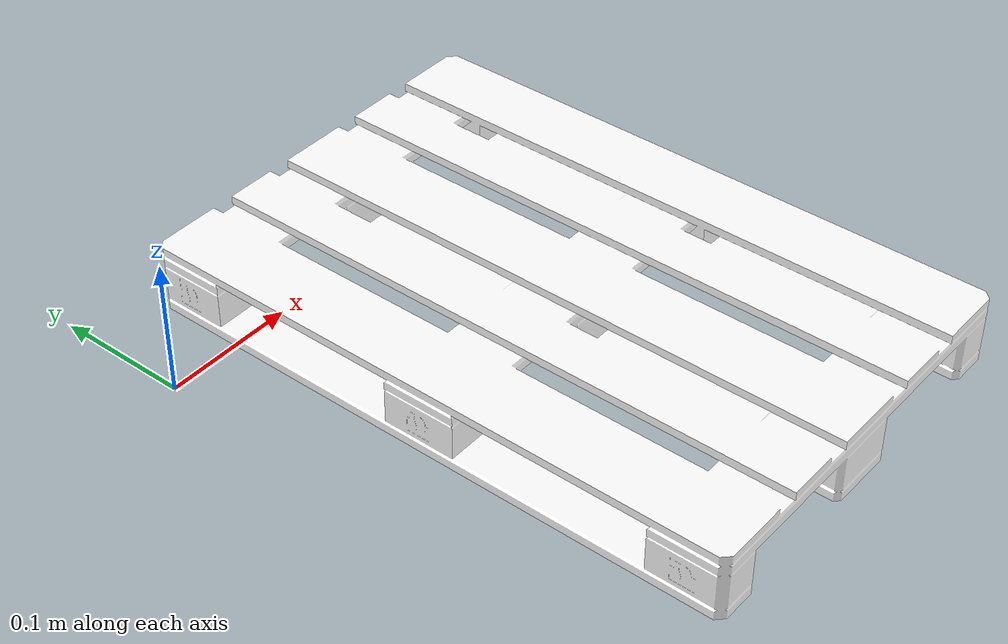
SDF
<?xml version='1.0'?>
<sdf version='1.6'>
  <model name='pallet'>
    <pose frame=''>0 0 0.07 0 0 0</pose>
    <self_collide>false</self_collide>
    <!-- BASE_LINK FRAME -->
    <link name='pallet_base'>
      <pose frame=''>0 0 0 0 0 0</pose>
      <collision name="pallet_right_collision">
        <geometry>

          <mesh>
            <scale>0.35 0.35 0.35</scale>
            <uri>model://pallet/meshes/pallet.dae</uri>
          </mesh>
        </geometry>
      </collision>
      <visual name='pallet_visual'>
        <pose frame=''>0 0 0 0 0 0</pose>
        <geometry>
          <mesh>
            <scale>0.35 0.35 0.35</scale>
            <uri>model://pallet/meshes/pallet.dae</uri>
          </mesh>
        </geometry>
      </visual>
    </link>
    <static>0</static>
  </model>
</sdf>
